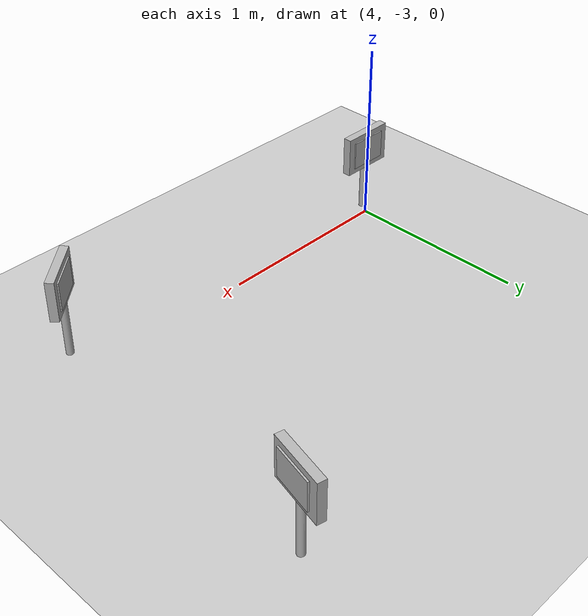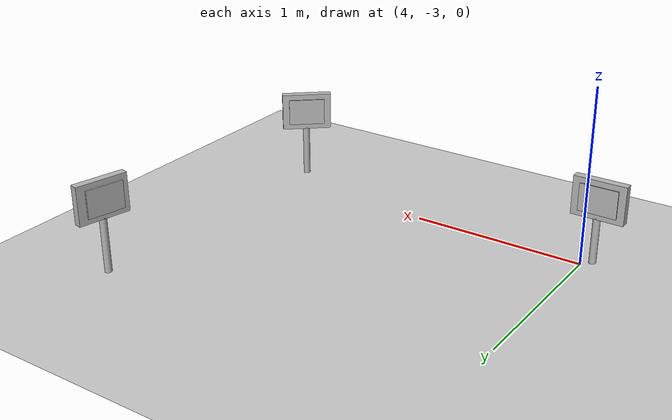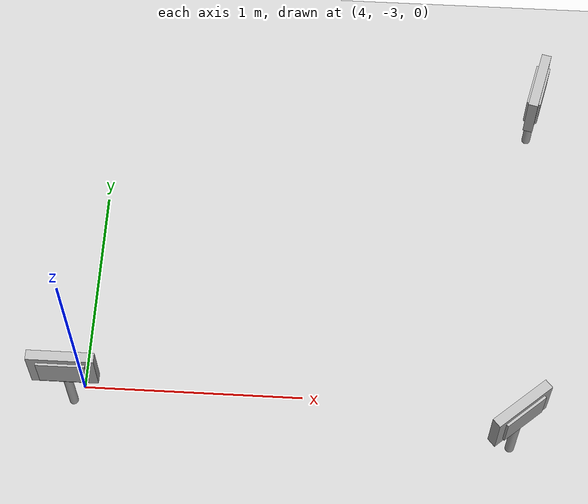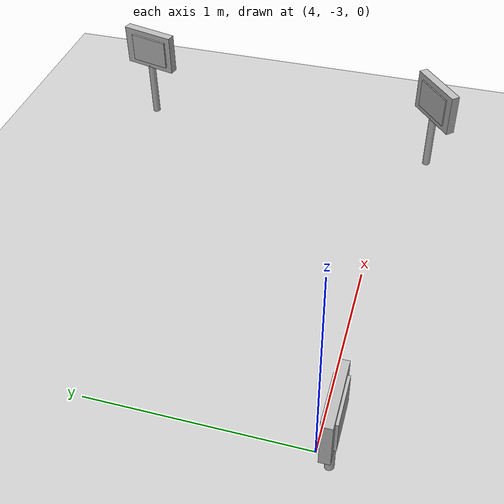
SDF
<sdf version="1.7">
 <world name="default">
  <model name="ground_plane">
   <static>1</static>
   <link name="link">
    <collision name="collision">
     <geometry><plane><normal>0 0 1</normal><size>100 100</size></plane></geometry>
     <surface>
      <contact><collide_bitmask>65535</collide_bitmask></contact>
      <friction><ode><mu>100</mu><mu2>50</mu2></ode></friction>
     </surface>
    </collision>
    <visual name="visual">
     <cast_shadows>0</cast_shadows>
     <geometry><plane><normal>0 0 1</normal><size>100 100</size></plane></geometry>
     <material>
      <script><uri>file://media/materials/scripts/gazebo.material</uri><name>Gazebo/Grey</name></script>
     </material>
    </visual>
   </link>
  </model>
  <model name="letrero_riego_II_5">
   <link name="link_0">
    <inertial>
     <mass>0.0543151</mass>
     <inertia>
      <ixx>4.90351e-06</ixx>
      <ixy>0</ixy>
      <ixz>0</ixz>
      <iyy>4.90351e-06</iyy>
      <iyz>0</iyz>
      <izz>1.12837e-07</izz>
     </inertia>
    </inertial>
    <pose>0.002515 0.005109 0.153562 0 -0 0</pose>
    <visual name="visual">
     <geometry><cylinder><radius>0.0203836</radius><length>0.327243</length></cylinder></geometry>
     <material>
      <lighting>1</lighting>
      <script>
       <uri>model://letrero_riego_II/madera/scripts</uri>
       <uri>model://letrero_riego_II/madera/textures</uri>
       <name>textur/madera</name>
      </script>
      <shader type="pixel"/>
      <emissive>0 0 0 1</emissive>
     </material>
    </visual>
    <collision name="collision">
     <geometry><cylinder><radius>0.020384</radius><length>0.327243</length></cylinder></geometry>
     <surface>
      <friction>
       <ode><mu>1</mu><mu2>1</mu2><fdir1>0 0 0</fdir1><slip1>0</slip1><slip2>0</slip2></ode>
       <torsional>
        <coefficient>1</coefficient>
        <patch_radius>0</patch_radius>
        <surface_radius>0</surface_radius>
        <use_patch_radius>1</use_patch_radius>
        <ode><slip>0</slip></ode>
       </torsional>
      </friction>
      <bounce><restitution_coefficient>0</restitution_coefficient><threshold>1e+06</threshold></bounce>
      <contact>
       <collide_without_contact>0</collide_without_contact>
       <collide_without_contact_bitmask>1</collide_without_contact_bitmask>
       <collide_bitmask>1</collide_bitmask>
       <ode>
        <soft_cfm>0</soft_cfm>
        <soft_erp>0.2</soft_erp>
        <kp>1e+13</kp>
        <kd>1</kd>
        <max_vel>0.01</max_vel>
        <min_depth>0</min_depth>
       </ode>
       <bullet>
        <split_impulse>1</split_impulse>
        <split_impulse_penetration_threshold>-0.01</split_impulse_penetration_threshold>
        <soft_cfm>0</soft_cfm>
        <soft_erp>0.2</soft_erp>
        <kp>1e+13</kp>
        <kd>1</kd>
       </bullet>
      </contact>
     </surface>
    </collision>
   </link>
   <link name="link_1">
    <inertial>
     <mass>0.00299633</mass>
     <inertia>
      <ixx>1.27855e-05</ixx>
      <ixy>0</ixy>
      <ixz>0</ixz>
      <iyy>3.42923e-05</iyy>
      <iyz>0</iyz>
      <izz>2.25402e-05</izz>
     </inertia>
    </inertial>
    <pose>-0.001542 0.002452 0.422031 0 -0 0</pose>
    <visual name="visual">
     <geometry><box><size>0.296988 0.04549 0.221665</size></box></geometry>
     <material>
      <lighting>1</lighting>
      <script>
       <uri>model://letrero_riego_II/madera/scripts</uri>
       <uri>model://letrero_riego_II/madera/textures</uri>
       <name>textur/madera</name>
      </script>
      <shader type="pixel"/>
      <emissive>0 0 0 1</emissive>
     </material>
    </visual>
    <collision name="collision">
     <geometry><box><size>0.296988 0.04549 0.221665</size></box></geometry>
     <surface>
      <friction>
       <ode><mu>1</mu><mu2>1</mu2><fdir1>0 0 0</fdir1><slip1>0</slip1><slip2>0</slip2></ode>
       <torsional>
        <coefficient>1</coefficient>
        <patch_radius>0</patch_radius>
        <surface_radius>0</surface_radius>
        <use_patch_radius>1</use_patch_radius>
        <ode><slip>0</slip></ode>
       </torsional>
      </friction>
      <bounce><restitution_coefficient>0</restitution_coefficient><threshold>1e+06</threshold></bounce>
      <contact>
       <collide_without_contact>0</collide_without_contact>
       <collide_without_contact_bitmask>1</collide_without_contact_bitmask>
       <collide_bitmask>1</collide_bitmask>
       <ode>
        <soft_cfm>0</soft_cfm>
        <soft_erp>0.2</soft_erp>
        <kp>1e+13</kp>
        <kd>1</kd>
        <max_vel>0.01</max_vel>
        <min_depth>0</min_depth>
       </ode>
       <bullet>
        <split_impulse>1</split_impulse>
        <split_impulse_penetration_threshold>-0.01</split_impulse_penetration_threshold>
        <soft_cfm>0</soft_cfm>
        <soft_erp>0.2</soft_erp>
        <kp>1e+13</kp>
        <kd>1</kd>
       </bullet>
      </contact>
     </surface>
    </collision>
   </link>
   <link name="link_2">
    <inertial>
     <mass>0.00173577</mass>
     <inertia>
      <ixx>4.23206e-06</ixx>
      <ixy>0</ixy>
      <ixz>0</ixz>
      <iyy>1.03921e-05</iyy>
      <iyz>0</iyz>
      <izz>7.37287e-06</izz>
     </inertia>
    </inertial>
    <pose>-0.010225 0.002657 0.421501 0 -0 0</pose>
    <visual name="visual">
     <geometry><box><size>0.216284 0.064749 0.15832</size></box></geometry>
     <material>
      <lighting>1</lighting>
      <script>
       <uri>model://letrero_riego_II/materials/scripts</uri>
       <uri>model://letrero_riego_II/materials/textures</uri>
       <name>textur/sisrie</name>
      </script>
      <shader type="pixel"/>
      <emissive>0 0 0 1</emissive>
     </material>
    </visual>
    <collision name="collision">
     <geometry><box><size>0.216284 0.064749 0.15832</size></box></geometry>
     <surface>
      <friction>
       <ode><mu>1</mu><mu2>1</mu2><fdir1>0 0 0</fdir1><slip1>0</slip1><slip2>0</slip2></ode>
       <torsional>
        <coefficient>1</coefficient>
        <patch_radius>0</patch_radius>
        <surface_radius>0</surface_radius>
        <use_patch_radius>1</use_patch_radius>
        <ode><slip>0</slip></ode>
       </torsional>
      </friction>
      <bounce><restitution_coefficient>0</restitution_coefficient><threshold>1e+06</threshold></bounce>
      <contact>
       <collide_without_contact>0</collide_without_contact>
       <collide_without_contact_bitmask>1</collide_without_contact_bitmask>
       <collide_bitmask>1</collide_bitmask>
       <ode>
        <soft_cfm>0</soft_cfm>
        <soft_erp>0.2</soft_erp>
        <kp>1e+13</kp>
        <kd>1</kd>
        <max_vel>0.01</max_vel>
        <min_depth>0</min_depth>
       </ode>
       <bullet>
        <split_impulse>1</split_impulse>
        <split_impulse_penetration_threshold>-0.01</split_impulse_penetration_threshold>
        <soft_cfm>0</soft_cfm>
        <soft_erp>0.2</soft_erp>
        <kp>1e+13</kp>
        <kd>1</kd>
       </bullet>
      </contact>
     </surface>
    </collision>
   </link>
   <joint name="link_0_JOINT_1" type="fixed">
    <parent>link_0</parent>
    <child>link_1</child>
    <physics>
     <ode><limit><cfm>0</cfm><erp>0.2</erp></limit><suspension><cfm>0</cfm><erp>0.2</erp></suspension></ode>
    </physics>
   </joint>
   <joint name="link_0_JOINT_2" type="fixed">
    <parent>link_0</parent>
    <child>link_2</child>
    <physics>
     <ode><limit><cfm>0</cfm><erp>0.2</erp></limit><suspension><cfm>0</cfm><erp>0.2</erp></suspension></ode>
    </physics>
   </joint>
   <static>1</static>
   <pose>6.04506 -1.54481 0 0 -0 1.33624</pose>
  </model>
  <model name="letrero_insecto_2">
   <link name="link_0">
    <inertial>
     <mass>0.00543151</mass>
     <inertia>
      <ixx>4.90351e-06</ixx>
      <ixy>0</ixy>
      <ixz>0</ixz>
      <iyy>4.90351e-06</iyy>
      <iyz>0</iyz>
      <izz>1.12837e-07</izz>
     </inertia>
    </inertial>
    <pose>0.002372 -0.000902 -0.178803 0 -0 0</pose>
    <visual name="visual">
     <geometry><cylinder><radius>0.0203836</radius><length>0.327243</length></cylinder></geometry>
     <material>
      <lighting>1</lighting>
      <script>
       <uri>model://letrero_insecto/madera/scripts</uri>
       <uri>model://letrero_insecto/madera/textures</uri>
       <name>textur/madera</name>
      </script>
      <shader type="pixel"/>
      <emissive>0 0 0 1</emissive>
     </material>
    </visual>
    <collision name="collision">
     <geometry><cylinder><radius>0.020384</radius><length>0.327243</length></cylinder></geometry>
     <surface>
      <friction>
       <ode><mu>1</mu><mu2>1</mu2><fdir1>0 0 0</fdir1><slip1>0</slip1><slip2>0</slip2></ode>
       <torsional>
        <coefficient>1</coefficient>
        <patch_radius>0</patch_radius>
        <surface_radius>0</surface_radius>
        <use_patch_radius>1</use_patch_radius>
        <ode><slip>0</slip></ode>
       </torsional>
      </friction>
      <bounce><restitution_coefficient>0</restitution_coefficient><threshold>1e+06</threshold></bounce>
      <contact>
       <collide_without_contact>0</collide_without_contact>
       <collide_without_contact_bitmask>1</collide_without_contact_bitmask>
       <collide_bitmask>1</collide_bitmask>
       <ode>
        <soft_cfm>0</soft_cfm>
        <soft_erp>0.2</soft_erp>
        <kp>1e+13</kp>
        <kd>1</kd>
        <max_vel>0.01</max_vel>
        <min_depth>0</min_depth>
       </ode>
       <bullet>
        <split_impulse>1</split_impulse>
        <split_impulse_penetration_threshold>-0.01</split_impulse_penetration_threshold>
        <soft_cfm>0</soft_cfm>
        <soft_erp>0.2</soft_erp>
        <kp>1e+13</kp>
        <kd>1</kd>
       </bullet>
      </contact>
     </surface>
    </collision>
   </link>
   <link name="link_1">
    <inertial>
     <mass>0.00299633</mass>
     <inertia>
      <ixx>1.27855e-05</ixx>
      <ixy>0</ixy>
      <ixz>0</ixz>
      <iyy>3.42923e-05</iyy>
      <iyz>0</iyz>
      <izz>2.25402e-05</izz>
     </inertia>
    </inertial>
    <pose>-0.001685 -0.003559 0.089666 0 -0 0</pose>
    <visual name="visual">
     <geometry><box><size>0.296988 0.04549 0.221665</size></box></geometry>
     <material>
      <lighting>1</lighting>
      <script>
       <uri>model://letrero_insecto/madera/scripts</uri>
       <uri>model://letrero_insecto/madera/textures</uri>
       <name>textur/madera</name>
      </script>
      <shader type="pixel"/>
      <emissive>0 0 0 1</emissive>
     </material>
    </visual>
    <collision name="collision">
     <geometry><box><size>0.296988 0.04549 0.221665</size></box></geometry>
     <surface>
      <friction>
       <ode><mu>1</mu><mu2>1</mu2><fdir1>0 0 0</fdir1><slip1>0</slip1><slip2>0</slip2></ode>
       <torsional>
        <coefficient>1</coefficient>
        <patch_radius>0</patch_radius>
        <surface_radius>0</surface_radius>
        <use_patch_radius>1</use_patch_radius>
        <ode><slip>0</slip></ode>
       </torsional>
      </friction>
      <bounce><restitution_coefficient>0</restitution_coefficient><threshold>1e+06</threshold></bounce>
      <contact>
       <collide_without_contact>0</collide_without_contact>
       <collide_without_contact_bitmask>1</collide_without_contact_bitmask>
       <collide_bitmask>1</collide_bitmask>
       <ode>
        <soft_cfm>0</soft_cfm>
        <soft_erp>0.2</soft_erp>
        <kp>1e+13</kp>
        <kd>1</kd>
        <max_vel>0.01</max_vel>
        <min_depth>0</min_depth>
       </ode>
       <bullet>
        <split_impulse>1</split_impulse>
        <split_impulse_penetration_threshold>-0.01</split_impulse_penetration_threshold>
        <soft_cfm>0</soft_cfm>
        <soft_erp>0.2</soft_erp>
        <kp>1e+13</kp>
        <kd>1</kd>
       </bullet>
      </contact>
     </surface>
    </collision>
   </link>
   <link name="link_2">
    <inertial>
     <mass>0.00219695</mass>
     <inertia>
      <ixx>5.34209e-06</ixx>
      <ixy>0</ixy>
      <ixz>0</ixz>
      <iyy>1.31531e-05</iyy>
      <iyz>0</iyz>
      <izz>9.31738e-06</izz>
     </inertia>
    </inertial>
    <pose>-0.001275 -0.005928 0.089136 0 -0 0</pose>
    <visual name="visual">
     <geometry><box><size>0.216284 0.06414 0.15832</size></box></geometry>
     <material>
      <lighting>1</lighting>
      <script>
       <uri>model://letrero_insecto/materials/scripts</uri>
       <uri>model://letrero_insecto/materials/textures</uri>
       <name>textur/insec</name>
      </script>
      <shader type="pixel"/>
      <emissive>0 0 0 1</emissive>
     </material>
    </visual>
    <collision name="collision">
     <geometry><box><size>0.216284 0.06414 0.15832</size></box></geometry>
     <surface>
      <friction>
       <ode><mu>1</mu><mu2>1</mu2><fdir1>0 0 0</fdir1><slip1>0</slip1><slip2>0</slip2></ode>
       <torsional>
        <coefficient>1</coefficient>
        <patch_radius>0</patch_radius>
        <surface_radius>0</surface_radius>
        <use_patch_radius>1</use_patch_radius>
        <ode><slip>0</slip></ode>
       </torsional>
      </friction>
      <bounce><restitution_coefficient>0</restitution_coefficient><threshold>1e+06</threshold></bounce>
      <contact>
       <collide_without_contact>0</collide_without_contact>
       <collide_without_contact_bitmask>1</collide_without_contact_bitmask>
       <collide_bitmask>1</collide_bitmask>
       <ode>
        <soft_cfm>0</soft_cfm>
        <soft_erp>0.2</soft_erp>
        <kp>1e+13</kp>
        <kd>1</kd>
        <max_vel>0.01</max_vel>
        <min_depth>0</min_depth>
       </ode>
       <bullet>
        <split_impulse>1</split_impulse>
        <split_impulse_penetration_threshold>-0.01</split_impulse_penetration_threshold>
        <soft_cfm>0</soft_cfm>
        <soft_erp>0.2</soft_erp>
        <kp>1e+13</kp>
        <kd>1</kd>
       </bullet>
      </contact>
     </surface>
    </collision>
   </link>
   <joint name="link_0_JOINT_1" type="fixed">
    <parent>link_0</parent>
    <child>link_1</child>
    <physics>
     <ode><limit><cfm>0</cfm><erp>0.2</erp></limit><suspension><cfm>0</cfm><erp>0.2</erp></suspension></ode>
    </physics>
   </joint>
   <joint name="link_0_JOINT_2" type="fixed">
    <parent>link_0</parent>
    <child>link_2</child>
    <physics>
     <ode><limit><cfm>0</cfm><erp>0.2</erp></limit><suspension><cfm>0</cfm><erp>0.2</erp></suspension></ode>
    </physics>
   </joint>
   <static>1</static>
   <pose>5.94394 -3.19059 0.322032 0 -0 0.712115</pose>
  </model>
  <model name="letrero_fresa_5">
   <link name="link_0">
    <inertial>
     <mass>0.00543151</mass>
     <inertia>
      <ixx>4.90351e-06</ixx>
      <ixy>0</ixy>
      <ixz>0</ixz>
      <iyy>4.90351e-06</iyy>
      <iyz>0</iyz>
      <izz>1.12837e-07</izz>
     </inertia>
    </inertial>
    <pose>0.002372 -0.000902 -0.178803 0 -0 0</pose>
    <visual name="visual">
     <geometry><cylinder><radius>0.0203836</radius><length>0.327243</length></cylinder></geometry>
     <material>
      <lighting>1</lighting>
      <script>
       <uri>model://letrero_fresa/madera/scripts</uri>
       <uri>model://letrero_fresa/madera/textures</uri>
       <name>textur/madera</name>
      </script>
      <shader type="pixel"/>
      <emissive>0 0 0 1</emissive>
     </material>
    </visual>
    <collision name="collision">
     <geometry><cylinder><radius>0.020384</radius><length>0.327243</length></cylinder></geometry>
     <surface>
      <friction>
       <ode><mu>1</mu><mu2>1</mu2><fdir1>0 0 0</fdir1><slip1>0</slip1><slip2>0</slip2></ode>
       <torsional>
        <coefficient>1</coefficient>
        <patch_radius>0</patch_radius>
        <surface_radius>0</surface_radius>
        <use_patch_radius>1</use_patch_radius>
        <ode><slip>0</slip></ode>
       </torsional>
      </friction>
      <bounce><restitution_coefficient>0</restitution_coefficient><threshold>1e+06</threshold></bounce>
      <contact>
       <collide_without_contact>0</collide_without_contact>
       <collide_without_contact_bitmask>1</collide_without_contact_bitmask>
       <collide_bitmask>1</collide_bitmask>
       <ode>
        <soft_cfm>0</soft_cfm>
        <soft_erp>0.2</soft_erp>
        <kp>1e+13</kp>
        <kd>1</kd>
        <max_vel>0.01</max_vel>
        <min_depth>0</min_depth>
       </ode>
       <bullet>
        <split_impulse>1</split_impulse>
        <split_impulse_penetration_threshold>-0.01</split_impulse_penetration_threshold>
        <soft_cfm>0</soft_cfm>
        <soft_erp>0.2</soft_erp>
        <kp>1e+13</kp>
        <kd>1</kd>
       </bullet>
      </contact>
     </surface>
    </collision>
   </link>
   <link name="link_1">
    <inertial>
     <mass>0.00299633</mass>
     <inertia>
      <ixx>1.27855e-05</ixx>
      <ixy>0</ixy>
      <ixz>0</ixz>
      <iyy>3.42923e-05</iyy>
      <iyz>0</iyz>
      <izz>2.25402e-05</izz>
     </inertia>
    </inertial>
    <pose>-0.001685 -0.003559 0.089666 0 -0 0</pose>
    <visual name="visual">
     <geometry><box><size>0.296988 0.04549 0.221665</size></box></geometry>
     <material>
      <lighting>1</lighting>
      <script>
       <uri>model://letrero_fresa/madera/scripts</uri>
       <uri>model://letrero_fresa/madera/textures</uri>
       <name>textur/madera</name>
      </script>
      <shader type="pixel"/>
      <emissive>0 0 0 1</emissive>
     </material>
    </visual>
    <collision name="collision">
     <geometry><box><size>0.296988 0.04549 0.221665</size></box></geometry>
     <surface>
      <friction>
       <ode><mu>1</mu><mu2>1</mu2><fdir1>0 0 0</fdir1><slip1>0</slip1><slip2>0</slip2></ode>
       <torsional>
        <coefficient>1</coefficient>
        <patch_radius>0</patch_radius>
        <surface_radius>0</surface_radius>
        <use_patch_radius>1</use_patch_radius>
        <ode><slip>0</slip></ode>
       </torsional>
      </friction>
      <bounce><restitution_coefficient>0</restitution_coefficient><threshold>1e+06</threshold></bounce>
      <contact>
       <collide_without_contact>0</collide_without_contact>
       <collide_without_contact_bitmask>1</collide_without_contact_bitmask>
       <collide_bitmask>1</collide_bitmask>
       <ode>
        <soft_cfm>0</soft_cfm>
        <soft_erp>0.2</soft_erp>
        <kp>1e+13</kp>
        <kd>1</kd>
        <max_vel>0.01</max_vel>
        <min_depth>0</min_depth>
       </ode>
       <bullet>
        <split_impulse>1</split_impulse>
        <split_impulse_penetration_threshold>-0.01</split_impulse_penetration_threshold>
        <soft_cfm>0</soft_cfm>
        <soft_erp>0.2</soft_erp>
        <kp>1e+13</kp>
        <kd>1</kd>
       </bullet>
      </contact>
     </surface>
    </collision>
   </link>
   <link name="link_2">
    <inertial>
     <mass>0.00219695</mass>
     <inertia>
      <ixx>5.34209e-06</ixx>
      <ixy>0</ixy>
      <ixz>0</ixz>
      <iyy>1.31531e-05</iyy>
      <iyz>0</iyz>
      <izz>9.31738e-06</izz>
     </inertia>
    </inertial>
    <pose>-0.001275 -0.005928 0.089136 0 -0 0</pose>
    <visual name="visual">
     <geometry><box><size>0.216284 0.06414 0.15832</size></box></geometry>
     <material>
      <lighting>1</lighting>
      <script>
       <uri>model://letrero_fresa/materials/scripts</uri>
       <uri>model://letrero_fresa/materials/textures</uri>
       <name>textur/difre</name>
      </script>
      <shader type="pixel"/>
      <emissive>0 0 0 1</emissive>
     </material>
    </visual>
    <collision name="collision">
     <geometry><box><size>0.216284 0.06414 0.15832</size></box></geometry>
     <surface>
      <friction>
       <ode><mu>1</mu><mu2>1</mu2><fdir1>0 0 0</fdir1><slip1>0</slip1><slip2>0</slip2></ode>
       <torsional>
        <coefficient>1</coefficient>
        <patch_radius>0</patch_radius>
        <surface_radius>0</surface_radius>
        <use_patch_radius>1</use_patch_radius>
        <ode><slip>0</slip></ode>
       </torsional>
      </friction>
      <bounce><restitution_coefficient>0</restitution_coefficient><threshold>1e+06</threshold></bounce>
      <contact>
       <collide_without_contact>0</collide_without_contact>
       <collide_without_contact_bitmask>1</collide_without_contact_bitmask>
       <collide_bitmask>1</collide_bitmask>
       <ode>
        <soft_cfm>0</soft_cfm>
        <soft_erp>0.2</soft_erp>
        <kp>1e+13</kp>
        <kd>1</kd>
        <max_vel>0.01</max_vel>
        <min_depth>0</min_depth>
       </ode>
       <bullet>
        <split_impulse>1</split_impulse>
        <split_impulse_penetration_threshold>-0.01</split_impulse_penetration_threshold>
        <soft_cfm>0</soft_cfm>
        <soft_erp>0.2</soft_erp>
        <kp>1e+13</kp>
        <kd>1</kd>
       </bullet>
      </contact>
     </surface>
    </collision>
   </link>
   <joint name="link_0_JOINT_1" type="fixed">
    <parent>link_0</parent>
    <child>link_1</child>
    <physics>
     <ode><limit><cfm>0</cfm><erp>0.2</erp></limit><suspension><cfm>0</cfm><erp>0.2</erp></suspension></ode>
    </physics>
   </joint>
   <joint name="link_0_JOINT_2" type="fixed">
    <parent>link_0</parent>
    <child>link_2</child>
    <physics>
     <ode><limit><cfm>0</cfm><erp>0.2</erp></limit><suspension><cfm>0</cfm><erp>0.2</erp></suspension></ode>
    </physics>
   </joint>
   <static>1</static>
   <pose>3.95397 -3.06286 0.282824 0 -0 0</pose>
  </model>
 </world>
</sdf>
